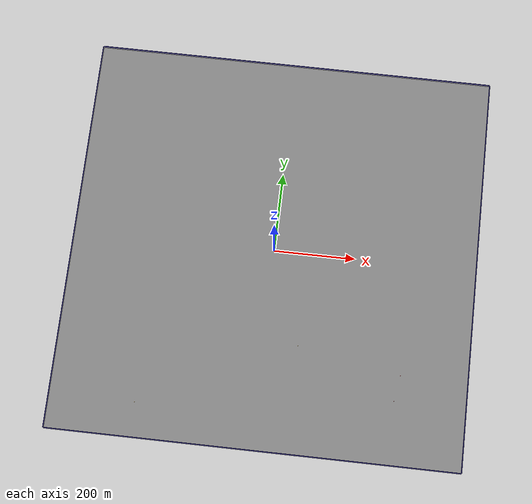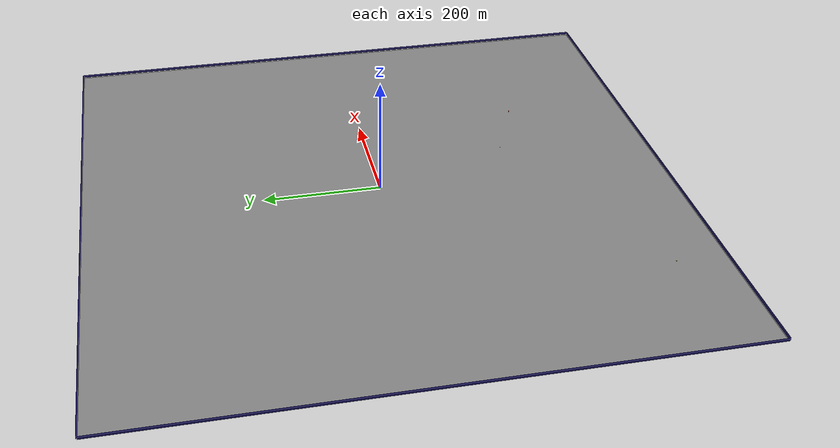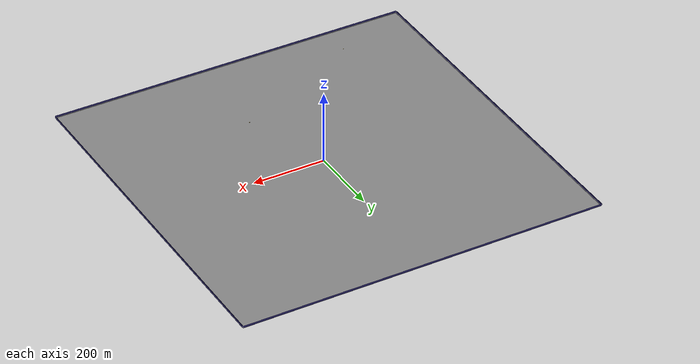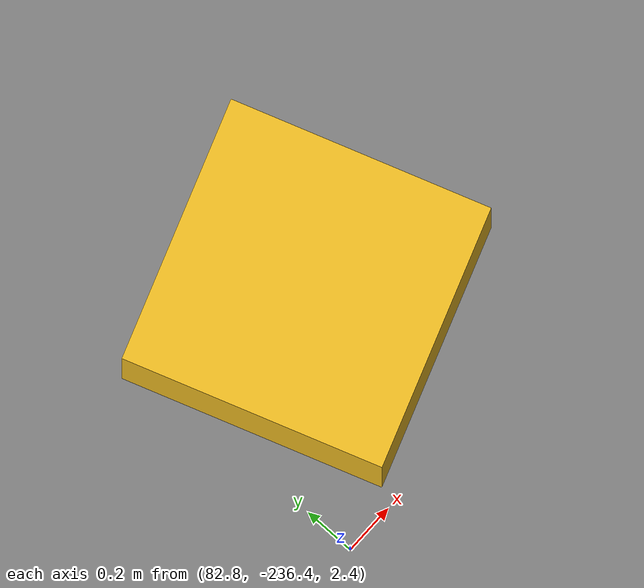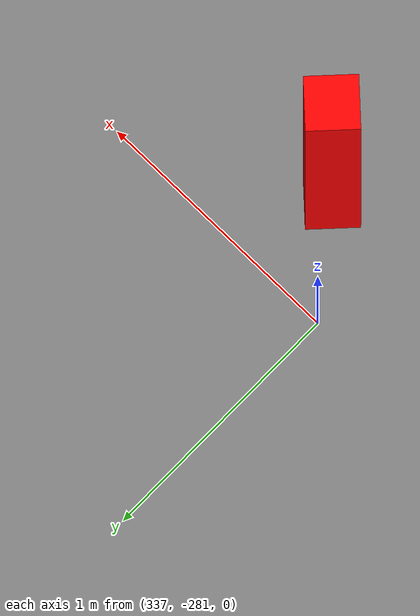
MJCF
<mujoco model="unnamed_model">
  <default>
    <default class="/" />
    <default class="border/" />
    <default class="border_1/" />
    <default class="border_2/" />
    <default class="border_3/" />
    <default class="agentplaceholder/" />
    <default class="placeholder_box/" />
    <default class="stone0/" />
    <default class="stone1/" />
    <default class="tree/" />
    <default class="tree_1/" />
  </default>
  <worldbody>
    <body name="border/">
      <body name="border/border" pos="0 501 2">
        <geom name="border/border_geom" class="border/" type="box" size="500 1 2" rgba="0.035000000000000003 0.016 0.28999999999999998 1" />
      </body>
    </body>
    <body name="border_1/">
      <body name="border_1/border" pos="0 -501 2">
        <geom name="border_1/border_geom" class="border_1/" type="box" size="500 1 2" rgba="0.035000000000000003 0.016 0.28999999999999998 1" />
      </body>
    </body>
    <body name="border_2/">
      <body name="border_2/border" pos="501 0 2">
        <geom name="border_2/border_geom" class="border_2/" type="box" size="1 500 2" rgba="0.035000000000000003 0.016 0.28999999999999998 1" />
      </body>
    </body>
    <body name="border_3/">
      <body name="border_3/border" pos="-501 0 2">
        <geom name="border_3/border_geom" class="border_3/" type="box" size="1 500 2" rgba="0.035000000000000003 0.016 0.28999999999999998 1" />
      </body>
    </body>
    <body euler="0 0 109.47289361032693" name="agentplaceholder/">
      <joint name="agentplaceholder/boxagent_freeJoint/" class="/" type="free" />
      <body name="agentplaceholder/agentplaceholder" pos="-250 0 3" euler="0 0 0">
        <geom name="agentplaceholder/boxagent_geom" class="agentplaceholder/" type="box" size="0.5 0.5 0.5" rgba="0.94899999999999995 0.74509999999999998 0.1333 1" euler="0 0 0" />
      </body>
    </body>
    <body name="placeholder_box/">
      <body name="placeholder_box/placeholder_box" pos="-292.41020000000003 -415.22539999999998 0.5" euler="0 0 6.1473435622918373">
        <geom name="placeholder_box/box_geom" class="placeholder_box/" type="box" size="0.5 0.5 0.5" rgba="0.94899999999999995 0.74509999999999998 0.1333 1" euler="0 0 0" />
      </body>
    </body>
    <body name="stone0/">
      <body name="stone0/stone0" pos="337.27424999999999 -281.35509999999999 0.10000000000000001" euler="0 0 -133.59646874726957">
        <geom name="stone0/stone_geom" class="stone0/" type="box" size="0.10000000000000001 0.10000000000000001 2" rgba="1 0 0 1" />
      </body>
    </body>
    <body name="stone1/">
      <body name="stone1/stone1" pos="327.17610000000002 -344.9228 0.10000000000000001" euler="0 0 126.66241474805656">
        <geom name="stone1/stone_geom" class="stone1/" type="box" size="0.10000000000000001 0.10000000000000001 2" rgba="1 0 0 1" />
      </body>
    </body>
    <body name="tree/">
      <body name="tree/tree" pos="200.49945 -399.64519999999999 0.10000000000000001" euler="0 0 -58.411051255729873">
        <geom name="tree/tree_geom" class="tree/" type="box" size="0.10000000000000001 0.10000000000000001 2" rgba="1 0 0 1" />
      </body>
    </body>
    <body name="tree_1/">
      <body name="tree_1/tree" pos="208.62569999999999 -288.70209999999997 0.10000000000000001" euler="0 0 62.156312458949429">
        <geom name="tree_1/tree_geom" class="tree_1/" type="box" size="0.10000000000000001 0.10000000000000001 2" rgba="1 0 0 1" />
      </body>
    </body>
    <geom name="base_plane" class="/" type="plane" size="500 500 0.10000000000000001" />
  </worldbody>
</mujoco>
